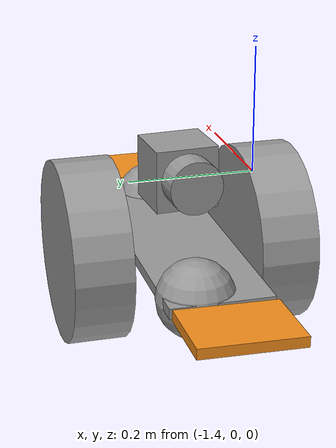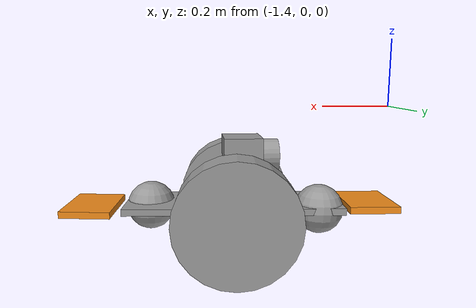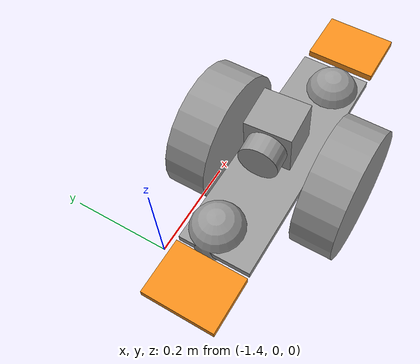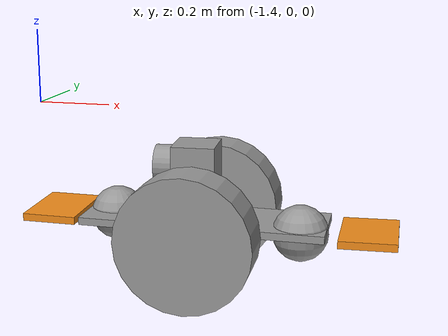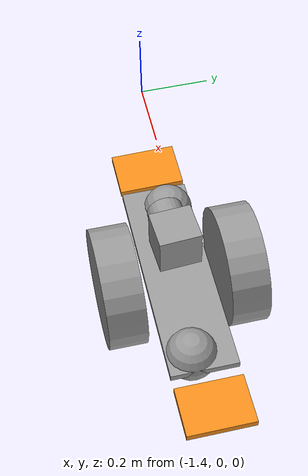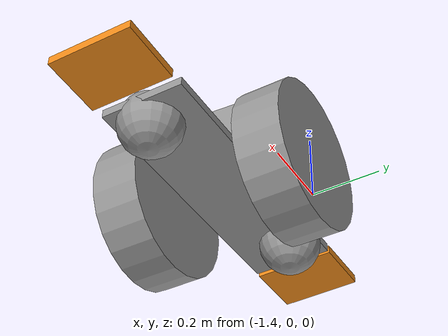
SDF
<?xml version='1.0'?>
<sdf version='1.6'>
  <model name='diffy'>
    <link name='camera_link'>
      <inertial>
        <mass>4.77215</mass>
        <inertia>
          <ixx>0.0113382</ixx>
          <ixy>0</ixy>
          <ixz>0</ixz>
          <iyy>0.0120839</iyy>
          <iyz>0</iyz>
          <izz>0.0115436</izz>
        </inertia>
        <pose frame=''>0 0 0 0 -0 0</pose>
      </inertial>
      <pose frame=''>-0.954456 -0.00255 -0.152556 -3e-06 0 1.63588</pose>
      <gravity>1</gravity>
      <self_collide>0</self_collide>
      <kinematic>0</kinematic>
      <enable_wind>0</enable_wind>
      <sensor name='camera' type='camera'>
        <pose frame=''>0 0.1 0 0 -0 1.57</pose>
        <camera name='__default__'>
          <horizontal_fov>1.047</horizontal_fov>
          <image>
            <width>320</width>
            <height>240</height>
          </image>
          <clip>
            <near>0.1</near>
            <far>100</far>
          </clip>
        </camera>
        <always_on>1</always_on>
        <update_rate>30</update_rate>
        <visualize>1</visualize>
        <plugin name='camera_controller' filename='libgazebo_ros_camera.so'>
          <alwaysOn>true</alwaysOn>
          <updateRate>0.0</updateRate>
          <cameraName>camera_diffy</cameraName>
          <imageTopicName>image_raw</imageTopicName>
          <cameraInfoTopicName>camera_info</cameraInfoTopicName>
          <frameName>camera_link</frameName>
          <hackBaseline>0.07</hackBaseline>
          <distortionK1>0.0</distortionK1>
          <distortionK2>0.0</distortionK2>
          <distortionK3>0.0</distortionK3>
          <distortionT1>0.0</distortionT1>
          <distortionT2>0.0</distortionT2>
          <robotNamespace>/red_team/loader_robot/</robotNamespace>
        </plugin>
      </sensor>
      <visual name='visual'>
        <pose frame=''>0 0 0 0 -0 0</pose>
        <geometry>
          <box>
            <size>0.124303 0.116517 0.122208</size>
          </box>
        </geometry>
        <material>
          <lighting>1</lighting>
          <script>
            <uri>file://media/materials/scripts/gazebo.material</uri>
            <name>Gazebo/Grey</name>
          </script>
          <ambient>0.3 0.3 0.3 1</ambient>
          <diffuse>0.7 0.7 0.7 1</diffuse>
          <specular>0.01 0.01 0.01 1</specular>
          <emissive>0 0 0 1</emissive>
          <shader type='vertex'>
            <normal_map>__default__</normal_map>
          </shader>
        </material>
        <cast_shadows>1</cast_shadows>
        <transparency>0</transparency>
      </visual>
      <visual name='ModelPreview_0::camera_link::visual_1'>
        <pose frame=''>0 0.08 0 1.57 -0 0</pose>
        <geometry>
          <cylinder>
            <radius>0.052595</radius>
            <length>0.06</length>
          </cylinder>
        </geometry>
        <material>
          <lighting>1</lighting>
          <script>
            <uri>file://media/materials/scripts/gazebo.material</uri>
            <name>Gazebo/Grey</name>
          </script>
          <ambient>0.3 0.3 0.3 1</ambient>
          <diffuse>0.7 0.7 0.7 1</diffuse>
          <specular>0.01 0.01 0.01 1</specular>
          <emissive>0 0 0 1</emissive>
          <shader type='vertex'>
            <normal_map>__default__</normal_map>
          </shader>
        </material>
        <cast_shadows>1</cast_shadows>
        <transparency>0</transparency>
      </visual>
      <visual name='ModelPreview_0::camera_link::visual_1'>
        <pose frame=''>0 0.08 0 1.57 -0 0</pose>
        <geometry>
          <cylinder>
            <radius>0.052595</radius>
            <length>0.06</length>
          </cylinder>
        </geometry>
        <material>
          <lighting>1</lighting>
          <script>
            <uri>file://media/materials/scripts/gazebo.material</uri>
            <name>Gazebo/Grey</name>
          </script>
          <ambient>0.3 0.3 0.3 1</ambient>
          <diffuse>0.7 0.7 0.7 1</diffuse>
          <specular>0.01 0.01 0.01 1</specular>
          <emissive>0 0 0 1</emissive>
          <shader type='vertex'>
            <normal_map>__default__</normal_map>
          </shader>
        </material>
        <cast_shadows>1</cast_shadows>
        <transparency>0</transparency>
      </visual>
      <visual name='visual'>
        <pose frame=''>0 0 0 0 -0 0</pose>
        <geometry>
          <box>
            <size>0.124303 0.116517 0.122208</size>
          </box>
        </geometry>
        <material>
          <lighting>1</lighting>
          <script>
            <uri>file://media/materials/scripts/gazebo.material</uri>
            <name>Gazebo/Grey</name>
          </script>
          <ambient>0.3 0.3 0.3 1</ambient>
          <diffuse>0.7 0.7 0.7 1</diffuse>
          <specular>0.01 0.01 0.01 1</specular>
          <emissive>0 0 0 1</emissive>
          <shader type='vertex'>
            <normal_map>__default__</normal_map>
          </shader>
        </material>
        <cast_shadows>1</cast_shadows>
        <transparency>0</transparency>
      </visual>
      <visual name='visual'>
        <pose frame=''>0 0 0 0 -0 0</pose>
        <geometry>
          <box>
            <size>0.124303 0.116517 0.122208</size>
          </box>
        </geometry>
        <material>
          <lighting>1</lighting>
          <script>
            <uri>file://media/materials/scripts/gazebo.material</uri>
            <name>Gazebo/Grey</name>
          </script>
          <ambient>0.3 0.3 0.3 1</ambient>
          <diffuse>0.7 0.7 0.7 1</diffuse>
          <specular>0.01 0.01 0.01 1</specular>
          <emissive>0 0 0 1</emissive>
          <shader type='vertex'>
            <normal_map>__default__</normal_map>
          </shader>
        </material>
        <cast_shadows>1</cast_shadows>
        <transparency>0</transparency>
      </visual>
      <visual name='ModelPreview_0::camera_link::visual_1'>
        <pose frame=''>0 0.08 0 1.57 -0 0</pose>
        <geometry>
          <cylinder>
            <radius>0.052595</radius>
            <length>0.06</length>
          </cylinder>
        </geometry>
        <material>
          <lighting>1</lighting>
          <script>
            <uri>file://media/materials/scripts/gazebo.material</uri>
            <name>Gazebo/Grey</name>
          </script>
          <ambient>0.3 0.3 0.3 1</ambient>
          <diffuse>0.7 0.7 0.7 1</diffuse>
          <specular>0.01 0.01 0.01 1</specular>
          <emissive>0 0 0 1</emissive>
          <shader type='vertex'>
            <normal_map>__default__</normal_map>
          </shader>
        </material>
        <cast_shadows>1</cast_shadows>
        <transparency>0</transparency>
      </visual>
      <visual name='ModelPreview_0::camera_link::visual_1'>
        <pose frame=''>0 0.08 0 1.57 -0 0</pose>
        <geometry>
          <cylinder>
            <radius>0.052595</radius>
            <length>0.06</length>
          </cylinder>
        </geometry>
        <material>
          <lighting>1</lighting>
          <script>
            <uri>file://media/materials/scripts/gazebo.material</uri>
            <name>Gazebo/Grey</name>
          </script>
          <ambient>0.3 0.3 0.3 1</ambient>
          <diffuse>0.7 0.7 0.7 1</diffuse>
          <specular>0.01 0.01 0.01 1</specular>
          <emissive>0 0 0 1</emissive>
          <shader type='vertex'>
            <normal_map>__default__</normal_map>
          </shader>
        </material>
        <cast_shadows>1</cast_shadows>
        <transparency>0</transparency>
      </visual>
      <visual name='ModelPreview_0::camera_link::visual_1'>
        <pose frame=''>0 0.08 0 1.57 -0 0</pose>
        <geometry>
          <cylinder>
            <radius>0.052595</radius>
            <length>0.06</length>
          </cylinder>
        </geometry>
        <material>
          <lighting>1</lighting>
          <script>
            <uri>file://media/materials/scripts/gazebo.material</uri>
            <name>Gazebo/Grey</name>
          </script>
          <ambient>0.3 0.3 0.3 1</ambient>
          <diffuse>0.7 0.7 0.7 1</diffuse>
          <specular>0.01 0.01 0.01 1</specular>
          <emissive>0 0 0 1</emissive>
          <shader type='vertex'>
            <normal_map>__default__</normal_map>
          </shader>
        </material>
        <cast_shadows>1</cast_shadows>
        <transparency>0</transparency>
      </visual>
      <visual name='visual'>
        <pose frame=''>0 0 0 0 -0 0</pose>
        <geometry>
          <box>
            <size>0.124303 0.116517 0.122208</size>
          </box>
        </geometry>
        <material>
          <lighting>1</lighting>
          <script>
            <uri>file://media/materials/scripts/gazebo.material</uri>
            <name>Gazebo/Grey</name>
          </script>
          <ambient>0.3 0.3 0.3 1</ambient>
          <diffuse>0.7 0.7 0.7 1</diffuse>
          <specular>0.01 0.01 0.01 1</specular>
          <emissive>0 0 0 1</emissive>
          <shader type='vertex'>
            <normal_map>__default__</normal_map>
          </shader>
        </material>
        <cast_shadows>1</cast_shadows>
        <transparency>0</transparency>
      </visual>
      <collision name='collision_1'>
        <laser_retro>0</laser_retro>
        <max_contacts>10</max_contacts>
        <pose frame=''>0 0.08 0 1.57 -0 0</pose>
        <geometry>
          <cylinder>
            <radius>0.052595</radius>
            <length>0.06</length>
          </cylinder>
        </geometry>
        <surface>
          <friction>
            <ode>
              <mu>1</mu>
              <mu2>1</mu2>
              <fdir1>0 0 0</fdir1>
              <slip1>0</slip1>
              <slip2>0</slip2>
            </ode>
            <torsional>
              <coefficient>1</coefficient>
              <patch_radius>0</patch_radius>
              <surface_radius>0</surface_radius>
              <use_patch_radius>1</use_patch_radius>
              <ode>
                <slip>0</slip>
              </ode>
            </torsional>
          </friction>
          <bounce>
            <restitution_coefficient>0</restitution_coefficient>
            <threshold>1e+06</threshold>
          </bounce>
          <contact>
            <collide_without_contact>0</collide_without_contact>
            <collide_without_contact_bitmask>1</collide_without_contact_bitmask>
            <collide_bitmask>1</collide_bitmask>
            <ode>
              <soft_cfm>0</soft_cfm>
              <soft_erp>0.2</soft_erp>
              <kp>1e+13</kp>
              <kd>1</kd>
              <max_vel>0.01</max_vel>
              <min_depth>0</min_depth>
            </ode>
            <bullet>
              <split_impulse>1</split_impulse>
              <split_impulse_penetration_threshold>-0.01</split_impulse_penetration_threshold>
              <soft_cfm>0</soft_cfm>
              <soft_erp>0.2</soft_erp>
              <kp>1e+13</kp>
              <kd>1</kd>
            </bullet>
          </contact>
        </surface>
      </collision>
    </link>
    <link name='base'>
      <inertial>
        <mass>1.88436</mass>
        <inertia>
          <ixx>0.00624462</ixx>
          <ixy>0</ixy>
          <ixz>0</ixz>
          <iyy>0.0695857</iyy>
          <iyz>0</iyz>
          <izz>0.0756995</izz>
        </inertia>
        <pose frame=''>0 0 0 0 -0 0</pose>
      </inertial>
      <self_collide>0</self_collide>
      <enable_wind>0</enable_wind>
      <kinematic>0</kinematic>
      <gravity>1</gravity>
      <pose frame=''>-0.928619 -0.000866 -0.304321 3.14159 -0 3.14159</pose>
      <visual name='visual'>
        <geometry>
          <box>
            <size>0.665373 0.198371 0.020395</size>
          </box>
        </geometry>
        <material>
          <script>
            <name>Gazebo/Grey</name>
            <uri>file://media/materials/scripts/gazebo.material</uri>
          </script>
          <ambient>0.3 0.3 0.3 1</ambient>
          <diffuse>0.7 0.7 0.7 1</diffuse>
          <specular>0.01 0.01 0.01 1</specular>
          <emissive>0 0 0 1</emissive>
          <shader type='vertex'>
            <normal_map>__default__</normal_map>
          </shader>
        </material>
        <pose frame=''>0 0 0 0 -0 0</pose>
        <cast_shadows>1</cast_shadows>
        <transparency>0</transparency>
      </visual>
      <collision name='collision'>
        <laser_retro>0</laser_retro>
        <max_contacts>10</max_contacts>
        <pose frame=''>0 0 0 0 -0 0</pose>
        <geometry>
          <box>
            <size>0.665373 0.198371 0.020395</size>
          </box>
        </geometry>
        <surface>
          <friction>
            <ode>
              <mu>1</mu>
              <mu2>1</mu2>
              <fdir1>0 0 0</fdir1>
              <slip1>0</slip1>
              <slip2>0</slip2>
            </ode>
            <torsional>
              <coefficient>1</coefficient>
              <patch_radius>0</patch_radius>
              <surface_radius>0</surface_radius>
              <use_patch_radius>1</use_patch_radius>
              <ode>
                <slip>0</slip>
              </ode>
            </torsional>
          </friction>
          <bounce>
            <restitution_coefficient>0</restitution_coefficient>
            <threshold>1e+06</threshold>
          </bounce>
          <contact>
            <collide_without_contact>0</collide_without_contact>
            <collide_without_contact_bitmask>1</collide_without_contact_bitmask>
            <collide_bitmask>1</collide_bitmask>
            <ode>
              <soft_cfm>0</soft_cfm>
              <soft_erp>0.2</soft_erp>
              <kp>1e+13</kp>
              <kd>1</kd>
              <max_vel>0.01</max_vel>
              <min_depth>0</min_depth>
            </ode>
            <bullet>
              <split_impulse>1</split_impulse>
              <split_impulse_penetration_threshold>-0.01</split_impulse_penetration_threshold>
              <soft_cfm>0</soft_cfm>
              <soft_erp>0.2</soft_erp>
              <kp>1e+13</kp>
              <kd>1</kd>
            </bullet>
          </contact>
        </surface>
      </collision>
    </link>
    <link name='base_clone'>
      <inertial>
        <mass>0.515508</mass>
        <inertia>
          <ixx>0.00170835</ixx>
          <ixy>0</ixy>
          <ixz>0</ixz>
          <iyy>0.00144127</iyy>
          <iyz>0</iyz>
          <izz>0.00311388</izz>
        </inertia>
        <pose frame=''>0 0 0 0 -0 0</pose>
      </inertial>
      <self_collide>0</self_collide>
      <enable_wind>0</enable_wind>
      <kinematic>0</kinematic>
      <gravity>1</gravity>
      <pose frame=''>-0.488048 0.000154 -0.311305 7e-06 0.02247 -3.14124</pose>
      <visual name='visual'>
        <geometry>
          <box>
            <size>0.15 0.198371 0.020395</size>
          </box>
        </geometry>
        <material>
          <script>
            <name>Gazebo/Orange</name>
            <uri>file://media/materials/scripts/gazebo.material</uri>
          </script>
          <ambient>0.3 0.3 0.3 1</ambient>
          <diffuse>0.7 0.7 0.7 1</diffuse>
          <specular>0.01 0.01 0.01 1</specular>
          <emissive>0 0 0 1</emissive>
          <shader type='vertex'>
            <normal_map>__default__</normal_map>
          </shader>
        </material>
        <pose frame=''>0 0 0 0 -0 0</pose>
        <cast_shadows>1</cast_shadows>
        <transparency>0</transparency>
      </visual>
      <collision name='collision'>
        <laser_retro>0</laser_retro>
        <max_contacts>10</max_contacts>
        <pose frame=''>0 0 0 0 -0 0</pose>
        <geometry>
          <box>
            <size>0.15 0.198371 0.020395</size>
          </box>
        </geometry>
        <surface>
          <friction>
            <ode>
              <mu>1</mu>
              <mu2>1</mu2>
              <fdir1>0 0 0</fdir1>
              <slip1>0</slip1>
              <slip2>0</slip2>
            </ode>
            <torsional>
              <coefficient>1</coefficient>
              <patch_radius>0</patch_radius>
              <surface_radius>0</surface_radius>
              <use_patch_radius>1</use_patch_radius>
              <ode>
                <slip>0</slip>
              </ode>
            </torsional>
          </friction>
          <bounce>
            <restitution_coefficient>0</restitution_coefficient>
            <threshold>1e+06</threshold>
          </bounce>
          <contact>
            <collide_without_contact>0</collide_without_contact>
            <collide_without_contact_bitmask>1</collide_without_contact_bitmask>
            <collide_bitmask>1</collide_bitmask>
            <ode>
              <soft_cfm>0</soft_cfm>
              <soft_erp>0.2</soft_erp>
              <kp>1e+13</kp>
              <kd>1</kd>
              <max_vel>0.01</max_vel>
              <min_depth>0</min_depth>
            </ode>
            <bullet>
              <split_impulse>1</split_impulse>
              <split_impulse_penetration_threshold>-0.01</split_impulse_penetration_threshold>
              <soft_cfm>0</soft_cfm>
              <soft_erp>0.2</soft_erp>
              <kp>1e+13</kp>
              <kd>1</kd>
            </bullet>
          </contact>
        </surface>
      </collision>
    </link>
    <link name='base_clone_clone'>
      <inertial>
        <mass>0.515508</mass>
        <inertia>
          <ixx>0.00170835</ixx>
          <ixy>0</ixy>
          <ixz>0</ixz>
          <iyy>0.00144127</iyy>
          <iyz>0</iyz>
          <izz>0.00311388</izz>
        </inertia>
        <pose frame=''>0 0 0 0 -0 0</pose>
      </inertial>
      <self_collide>0</self_collide>
      <enable_wind>0</enable_wind>
      <kinematic>0</kinematic>
      <gravity>1</gravity>
      <pose frame=''>-1.34785 -0.002584 -0.302673 -0.020352 -0.001667 -3.14077</pose>
      <visual name='visual'>
        <geometry>
          <box>
            <size>0.15 0.198371 0.020395</size>
          </box>
        </geometry>
        <material>
          <script>
            <name>Gazebo/Orange</name>
            <uri>file://media/materials/scripts/gazebo.material</uri>
          </script>
          <ambient>0.3 0.3 0.3 1</ambient>
          <diffuse>0.7 0.7 0.7 1</diffuse>
          <specular>0.01 0.01 0.01 1</specular>
          <emissive>0 0 0 1</emissive>
          <shader type='vertex'>
            <normal_map>__default__</normal_map>
          </shader>
        </material>
        <pose frame=''>0 0 0 0 -0 0</pose>
        <cast_shadows>1</cast_shadows>
        <transparency>0</transparency>
      </visual>
      <collision name='collision'>
        <laser_retro>0</laser_retro>
        <max_contacts>10</max_contacts>
        <pose frame=''>0 0 0 0 -0 0</pose>
        <geometry>
          <box>
            <size>0.15 0.198371 0.020395</size>
          </box>
        </geometry>
        <surface>
          <friction>
            <ode>
              <mu>1</mu>
              <mu2>1</mu2>
              <fdir1>0 0 0</fdir1>
              <slip1>0</slip1>
              <slip2>0</slip2>
            </ode>
            <torsional>
              <coefficient>1</coefficient>
              <patch_radius>0</patch_radius>
              <surface_radius>0</surface_radius>
              <use_patch_radius>1</use_patch_radius>
              <ode>
                <slip>0</slip>
              </ode>
            </torsional>
          </friction>
          <bounce>
            <restitution_coefficient>0</restitution_coefficient>
            <threshold>1e+06</threshold>
          </bounce>
          <contact>
            <collide_without_contact>0</collide_without_contact>
            <collide_without_contact_bitmask>1</collide_without_contact_bitmask>
            <collide_bitmask>1</collide_bitmask>
            <ode>
              <soft_cfm>0</soft_cfm>
              <soft_erp>0.2</soft_erp>
              <kp>1e+13</kp>
              <kd>1</kd>
              <max_vel>0.01</max_vel>
              <min_depth>0</min_depth>
            </ode>
            <bullet>
              <split_impulse>1</split_impulse>
              <split_impulse_penetration_threshold>-0.01</split_impulse_penetration_threshold>
              <soft_cfm>0</soft_cfm>
              <soft_erp>0.2</soft_erp>
              <kp>1e+13</kp>
              <kd>1</kd>
            </bullet>
          </contact>
        </surface>
      </collision>
    </link>
    <link name='link_0'>
      <inertial>
        <mass>1.62796</mass>
        <inertia>
          <ixx>0.00439887</ixx>
          <ixy>0</ixy>
          <ixz>0</ixz>
          <iyy>0.00439887</iyy>
          <iyz>0</iyz>
          <izz>0.00439887</izz>
        </inertia>
        <pose frame=''>0 0 0 0 -0 0</pose>
      </inertial>
      <pose frame=''>-0.666281 -0.023509 -0.314975 3.14158 -0.022467 0.000348</pose>
      <gravity>1</gravity>
      <self_collide>0</self_collide>
      <kinematic>0</kinematic>
      <enable_wind>0</enable_wind>
      <visual name='visual'>
        <pose frame=''>0 0 0 0 -0 0</pose>
        <geometry>
          <sphere>
            <radius>0.075</radius>
          </sphere>
        </geometry>
        <material>
          <lighting>1</lighting>
          <script>
            <uri>file://media/materials/scripts/gazebo.material</uri>
            <name>Gazebo/Grey</name>
          </script>
          <ambient>0.3 0.3 0.3 1</ambient>
          <diffuse>0.7 0.7 0.7 1</diffuse>
          <specular>0.01 0.01 0.01 1</specular>
          <emissive>0 0 0 1</emissive>
          <shader type='vertex'>
            <normal_map>__default__</normal_map>
          </shader>
        </material>
        <cast_shadows>1</cast_shadows>
        <transparency>0</transparency>
      </visual>
      <collision name='collision'>
        <laser_retro>0</laser_retro>
        <max_contacts>10</max_contacts>
        <pose frame=''>0 0 0 0 -0 0</pose>
        <geometry>
          <sphere>
            <radius>0.075</radius>
          </sphere>
        </geometry>
        <surface>
          <friction>
            <ode>
              <mu>1</mu>
              <mu2>1</mu2>
              <fdir1>0 0 0</fdir1>
              <slip1>0</slip1>
              <slip2>0</slip2>
            </ode>
            <torsional>
              <coefficient>1</coefficient>
              <patch_radius>0</patch_radius>
              <surface_radius>0</surface_radius>
              <use_patch_radius>1</use_patch_radius>
              <ode>
                <slip>0</slip>
              </ode>
            </torsional>
          </friction>
          <bounce>
            <restitution_coefficient>0</restitution_coefficient>
            <threshold>1e+06</threshold>
          </bounce>
          <contact>
            <collide_without_contact>0</collide_without_contact>
            <collide_without_contact_bitmask>1</collide_without_contact_bitmask>
            <collide_bitmask>1</collide_bitmask>
            <ode>
              <soft_cfm>0</soft_cfm>
              <soft_erp>0.2</soft_erp>
              <kp>1e+13</kp>
              <kd>1</kd>
              <max_vel>0.01</max_vel>
              <min_depth>0</min_depth>
            </ode>
            <bullet>
              <split_impulse>1</split_impulse>
              <split_impulse_penetration_threshold>-0.01</split_impulse_penetration_threshold>
              <soft_cfm>0</soft_cfm>
              <soft_erp>0.2</soft_erp>
              <kp>1e+13</kp>
              <kd>1</kd>
            </bullet>
          </contact>
        </surface>
      </collision>
    </link>
    <link name='link_2'>
      <inertial>
        <mass>1.237</mass>
        <inertia>
          <ixx>0.00278325</ixx>
          <ixy>0</ixy>
          <ixz>0</ixz>
          <iyy>0.00278325</iyy>
          <iyz>0</iyz>
          <izz>0.00278325</izz>
        </inertia>
        <pose frame=''>0 0 0 0 -0 0</pose>
      </inertial>
      <pose frame=''>-1.19215 0.029642 -0.313461 3.14158 -0.022467 0.000348</pose>
      <gravity>1</gravity>
      <self_collide>0</self_collide>
      <kinematic>0</kinematic>
      <enable_wind>0</enable_wind>
      <visual name='visual'>
        <pose frame=''>0 0 0 0 -0 0</pose>
        <geometry>
          <sphere>
            <radius>0.075</radius>
          </sphere>
        </geometry>
        <material>
          <lighting>1</lighting>
          <script>
            <uri>file://media/materials/scripts/gazebo.material</uri>
            <name>Gazebo/Grey</name>
          </script>
          <ambient>0.3 0.3 0.3 1</ambient>
          <diffuse>0.7 0.7 0.7 1</diffuse>
          <specular>0.01 0.01 0.01 1</specular>
          <emissive>0 0 0 1</emissive>
          <shader type='vertex'>
            <normal_map>__default__</normal_map>
          </shader>
        </material>
        <cast_shadows>1</cast_shadows>
        <transparency>0</transparency>
      </visual>
      <collision name='collision'>
        <laser_retro>0</laser_retro>
        <max_contacts>10</max_contacts>
        <pose frame=''>0 0 0 0 -0 0</pose>
        <geometry>
          <sphere>
            <radius>0.075</radius>
          </sphere>
        </geometry>
        <surface>
          <friction>
            <ode>
              <mu>1</mu>
              <mu2>1</mu2>
              <fdir1>0 0 0</fdir1>
              <slip1>0</slip1>
              <slip2>0</slip2>
            </ode>
            <torsional>
              <coefficient>1</coefficient>
              <patch_radius>0</patch_radius>
              <surface_radius>0</surface_radius>
              <use_patch_radius>1</use_patch_radius>
              <ode>
                <slip>0</slip>
              </ode>
            </torsional>
          </friction>
          <bounce>
            <restitution_coefficient>0</restitution_coefficient>
            <threshold>1e+06</threshold>
          </bounce>
          <contact>
            <collide_without_contact>0</collide_without_contact>
            <collide_without_contact_bitmask>1</collide_without_contact_bitmask>
            <collide_bitmask>1</collide_bitmask>
            <ode>
              <soft_cfm>0</soft_cfm>
              <soft_erp>0.2</soft_erp>
              <kp>1e+13</kp>
              <kd>1</kd>
              <max_vel>0.01</max_vel>
              <min_depth>0</min_depth>
            </ode>
            <bullet>
              <split_impulse>1</split_impulse>
              <split_impulse_penetration_threshold>-0.01</split_impulse_penetration_threshold>
              <soft_cfm>0</soft_cfm>
              <soft_erp>0.2</soft_erp>
              <kp>1e+13</kp>
              <kd>1</kd>
            </bullet>
          </contact>
        </surface>
      </collision>
    </link>
    <link name='wheel_0'>
      <inertial>
        <mass>0.0148235</mass>
        <inertia>
          <ixx>0.000136452</ixx>
          <ixy>0</ixy>
          <ixz>0</ixz>
          <iyy>0.000136452</iyy>
          <iyz>0</iyz>
          <izz>0.000240743</izz>
        </inertia>
        <pose frame=''>0 0 0 0 -0 0</pose>
      </inertial>
      <pose frame=''>-0.934723 0.178751 -0.304766 -1.5708 -0 -0</pose>
      <self_collide>0</self_collide>
      <enable_wind>0</enable_wind>
      <kinematic>0</kinematic>
      <gravity>1</gravity>
      <visual name='visual'>
        <pose frame=''>0 0 0 0 -0 0</pose>
        <geometry>
          <cylinder>
            <radius>0.180226</radius>
            <length>0.114092</length>
          </cylinder>
        </geometry>
        <material>
          <lighting>1</lighting>
          <script>
            <uri>file://media/materials/scripts/gazebo.material</uri>
            <name>Gazebo/Grey</name>
          </script>
          <ambient>0.3 0.3 0.3 1</ambient>
          <diffuse>0.7 0.7 0.7 1</diffuse>
          <specular>0.01 0.01 0.01 1</specular>
          <emissive>0 0 0 1</emissive>
        </material>
        <cast_shadows>1</cast_shadows>
        <transparency>0</transparency>
      </visual>
      <collision name='collision'>
        <laser_retro>0</laser_retro>
        <max_contacts>10</max_contacts>
        <pose frame=''>0 0 0 0 -0 0</pose>
        <geometry>
          <cylinder>
            <radius>0.180226</radius>
            <length>0.114092</length>
          </cylinder>
        </geometry>
        <surface>
          <friction>
            <ode>
              <mu>1</mu>
              <mu2>1</mu2>
              <fdir1>0 0 0</fdir1>
              <slip1>0</slip1>
              <slip2>0</slip2>
            </ode>
            <torsional>
              <coefficient>1</coefficient>
              <patch_radius>0</patch_radius>
              <surface_radius>0</surface_radius>
              <use_patch_radius>1</use_patch_radius>
              <ode>
                <slip>0</slip>
              </ode>
            </torsional>
          </friction>
          <bounce>
            <restitution_coefficient>0</restitution_coefficient>
            <threshold>1e+06</threshold>
          </bounce>
          <contact>
            <collide_without_contact>0</collide_without_contact>
            <collide_without_contact_bitmask>1</collide_without_contact_bitmask>
            <collide_bitmask>1</collide_bitmask>
            <ode>
              <soft_cfm>0</soft_cfm>
              <soft_erp>0.2</soft_erp>
              <kp>1e+13</kp>
              <kd>1</kd>
              <max_vel>0.01</max_vel>
              <min_depth>0</min_depth>
            </ode>
            <bullet>
              <split_impulse>1</split_impulse>
              <split_impulse_penetration_threshold>-0.01</split_impulse_penetration_threshold>
              <soft_cfm>0</soft_cfm>
              <soft_erp>0.2</soft_erp>
              <kp>1e+13</kp>
              <kd>1</kd>
            </bullet>
          </contact>
        </surface>
      </collision>
    </link>
    <link name='wheel_1'>
      <inertial>
        <mass>0.0148235</mass>
        <inertia>
          <ixx>0.00013645</ixx>
          <ixy>0</ixy>
          <ixz>0</ixz>
          <iyy>0.00013645</iyy>
          <iyz>0</iyz>
          <izz>0.00024074</izz>
        </inertia>
        <pose frame=''>0 0 0 0 -0 0</pose>
      </inertial>
      <pose frame=''>-0.934723 -0.183413 -0.304766 -1.5708 -0 -0</pose>
      <self_collide>0</self_collide>
      <enable_wind>0</enable_wind>
      <kinematic>0</kinematic>
      <gravity>1</gravity>
      <visual name='visual'>
        <pose frame=''>0 0 0 0 -0 0</pose>
        <geometry>
          <cylinder>
            <radius>0.180226</radius>
            <length>0.114092</length>
          </cylinder>
        </geometry>
        <material>
          <lighting>1</lighting>
          <script>
            <uri>file://media/materials/scripts/gazebo.material</uri>
            <name>Gazebo/Grey</name>
          </script>
          <ambient>0.3 0.3 0.3 1</ambient>
          <diffuse>0.7 0.7 0.7 1</diffuse>
          <specular>0.01 0.01 0.01 1</specular>
          <emissive>0 0 0 1</emissive>
          <shader type='pixel'>
            <normal_map>__default__</normal_map>
          </shader>
        </material>
        <cast_shadows>1</cast_shadows>
        <transparency>0</transparency>
      </visual>
      <collision name='collision'>
        <laser_retro>0</laser_retro>
        <max_contacts>10</max_contacts>
        <pose frame=''>0 0 0 0 -0 0</pose>
        <geometry>
          <cylinder>
            <radius>0.180226</radius>
            <length>0.114092</length>
          </cylinder>
        </geometry>
        <surface>
          <friction>
            <ode>
              <mu>1</mu>
              <mu2>1</mu2>
              <fdir1>0 0 0</fdir1>
              <slip1>0</slip1>
              <slip2>0</slip2>
            </ode>
            <torsional>
              <coefficient>1</coefficient>
              <patch_radius>0</patch_radius>
              <surface_radius>0</surface_radius>
              <use_patch_radius>1</use_patch_radius>
              <ode>
                <slip>0</slip>
              </ode>
            </torsional>
          </friction>
          <bounce>
            <restitution_coefficient>0</restitution_coefficient>
            <threshold>1e+06</threshold>
          </bounce>
          <contact>
            <collide_without_contact>0</collide_without_contact>
            <collide_without_contact_bitmask>1</collide_without_contact_bitmask>
            <collide_bitmask>1</collide_bitmask>
            <ode>
              <soft_cfm>0</soft_cfm>
              <soft_erp>0.2</soft_erp>
              <kp>1e+13</kp>
              <kd>1</kd>
              <max_vel>0.01</max_vel>
              <min_depth>0</min_depth>
            </ode>
            <bullet>
              <split_impulse>1</split_impulse>
              <split_impulse_penetration_threshold>-0.01</split_impulse_penetration_threshold>
              <soft_cfm>0</soft_cfm>
              <soft_erp>0.2</soft_erp>
              <kp>1e+13</kp>
              <kd>1</kd>
            </bullet>
          </contact>
        </surface>
      </collision>
    </link>
    <joint name='base_JOINT_0' type='fixed'>
      <parent>base</parent>
      <child>camera_link</child>
      <pose frame=''>0 0 0 0 -0 0</pose>
      <physics>
        <ode>
          <limit>
            <cfm>0</cfm>
            <erp>0.2</erp>
          </limit>
          <suspension>
            <cfm>0</cfm>
            <erp>0.2</erp>
          </suspension>
        </ode>
      </physics>
    </joint>
    <joint name='caster_1' type='ball'>
      <parent>base</parent>
      <child>link_0</child>
      <pose frame=''>0 0 0 0 -0 0</pose>
      <physics>
        <ode>
          <limit>
            <cfm>0</cfm>
            <erp>0.2</erp>
          </limit>
          <suspension>
            <cfm>0</cfm>
            <erp>0.2</erp>
          </suspension>
        </ode>
      </physics>
    </joint>
    <joint name='caster_2' type='ball'>
      <parent>base</parent>
      <child>link_2</child>
      <pose frame=''>0 0 0 0 -0 0</pose>
      <physics>
        <ode>
          <limit>
            <cfm>0</cfm>
            <erp>0.2</erp>
          </limit>
          <suspension>
            <cfm>0</cfm>
            <erp>0.2</erp>
          </suspension>
        </ode>
      </physics>
    </joint>
    <joint name='hinge_2' type='revolute'>
      <parent>base</parent>
      <child>base_clone_clone</child>
      <pose frame=''>-0.07 0 0 0 -0 0</pose>
      <axis>
        <xyz>0 1 0</xyz>
        <use_parent_model_frame>0</use_parent_model_frame>
        <limit>
          <lower>-1.5708</lower>
          <upper>1.5708</upper>
          <effort>10</effort>
          <velocity>-1</velocity>
        </limit>
        <dynamics>
          <spring_reference>0</spring_reference>
          <spring_stiffness>0</spring_stiffness>
          <damping>0</damping>
          <friction>0</friction>
        </dynamics>
      </axis>
      <physics>
        <ode>
          <limit>
            <cfm>0</cfm>
            <erp>0.2</erp>
          </limit>
          <suspension>
            <cfm>0</cfm>
            <erp>0.2</erp>
          </suspension>
        </ode>
      </physics>
    </joint>
    <joint name='hinge' type='revolute'>
      <parent>base</parent>
      <child>base_clone</child>
      <pose frame=''>0.1 0 0 0 -0 0</pose>
      <axis>
        <xyz>0 1 0</xyz>
        <use_parent_model_frame>0</use_parent_model_frame>
        <limit>
          <lower>-1.5708</lower>
          <upper>1.57079</upper>
          <effort>100</effort>
          <velocity>1</velocity>
        </limit>
        <dynamics>
          <spring_reference>0</spring_reference>
          <spring_stiffness>0</spring_stiffness>
          <damping>0</damping>
          <friction>0</friction>
        </dynamics>
      </axis>
      <physics>
        <ode>
          <limit>
            <cfm>0</cfm>
            <erp>0.2</erp>
          </limit>
          <suspension>
            <cfm>0</cfm>
            <erp>0.2</erp>
          </suspension>
        </ode>
      </physics>
    </joint>
    <joint name='joint_0' type='revolute'>
      <parent>base</parent>
      <child>wheel_0</child>
      <pose frame=''>0 0 0 0 -0 0</pose>
      <axis>
        <xyz>0 0 1</xyz>
        <use_parent_model_frame>0</use_parent_model_frame>
        <limit>
          <lower>-1.79769e+308</lower>
          <upper>1.79769e+308</upper>
          <effort>-1</effort>
          <velocity>-1</velocity>
        </limit>
        <dynamics>
          <spring_reference>0</spring_reference>
          <spring_stiffness>0</spring_stiffness>
          <damping>0</damping>
          <friction>0</friction>
        </dynamics>
      </axis>
      <physics>
        <ode>
          <limit>
            <cfm>0</cfm>
            <erp>0.2</erp>
          </limit>
          <suspension>
            <cfm>0</cfm>
            <erp>0.2</erp>
          </suspension>
        </ode>
      </physics>
    </joint>
    <joint name='joint_1' type='revolute'>
      <parent>base</parent>
      <child>wheel_1</child>
      <pose frame=''>0 0 0 0 -0 0</pose>
      <axis>
        <xyz>0 0 1</xyz>
        <use_parent_model_frame>0</use_parent_model_frame>
        <limit>
          <lower>-1.79769e+308</lower>
          <upper>1.79769e+308</upper>
          <effort>-1</effort>
          <velocity>-1</velocity>
        </limit>
        <dynamics>
          <spring_reference>0</spring_reference>
          <spring_stiffness>0</spring_stiffness>
          <damping>0</damping>
          <friction>0</friction>
        </dynamics>
      </axis>
      <physics>
        <ode>
          <limit>
            <cfm>0</cfm>
            <erp>0.2</erp>
          </limit>
          <suspension>
            <cfm>0</cfm>
            <erp>0.2</erp>
          </suspension>
        </ode>
      </physics>
    </joint>
    <static>0</static>
    <allow_auto_disable>1</allow_auto_disable>
    <plugin name='diff_drive' filename='libgazebo_ros_diff_drive.so'>
      <alwaysOn>true</alwaysOn>
      <updateRate>100</updateRate>
      <leftJoint>joint_0</leftJoint>
      <rightJoint>joint_1</rightJoint>
      <wheelSeparation>0.5380</wheelSeparation>
      <wheelDiameter>0.2410</wheelDiameter>
      <torque>100</torque>
      <commandTopic>cmd_vel</commandTopic>
      <odometryTopic>odom</odometryTopic>
      <odometryFrame>odom</odometryFrame>
      <robotBaseFrame>base</robotBaseFrame>
      <rosDebugLevel>na</rosDebugLevel>
      <publishWheelTF>false</publishWheelTF>
      <publishWheelJointState>false</publishWheelJointState>
      <wheelAcceleration>1</wheelAcceleration>
      <wheelTorque>100</wheelTorque>
      <odometrySource>world</odometrySource>
      <publishTf>1</publishTf>
      <robotNamespace>/red_team/loader_robot/</robotNamespace>
    </plugin>
    <plugin name='gazebo_ros_joy_to_joint' filename='libjoy_to_joints_gazebo_plugin_loader.so'>
      <map button='2' joint='hinge' scale='-1' type='position' kp='100' ki='0' kd='10'/>
      <map button='0' joint='hinge' scale='1' type='position' kp='100' ki='0' kd='10'/>
      <map button='3' joint='hinge_2' scale='1' type='position' kp='100' ki='0' kd='10'/>
      <map button='1' joint='hinge_2' scale='-1' type='position' kp='100' ki='0' kd='10'/>
      <robotNamespace>/</robotNamespace>
    </plugin>
  </model>
</sdf>
